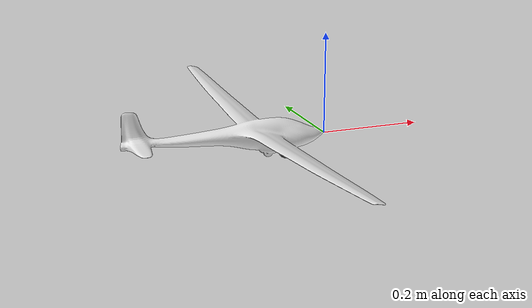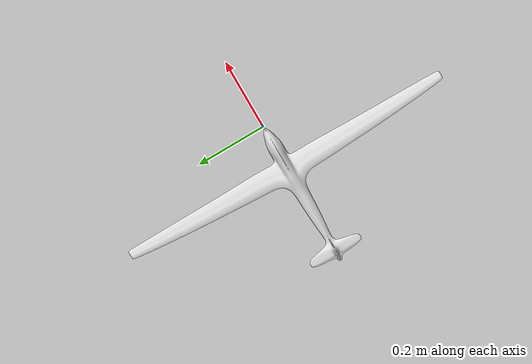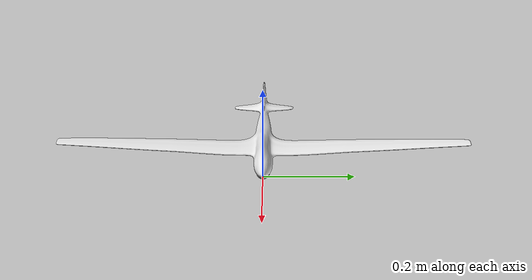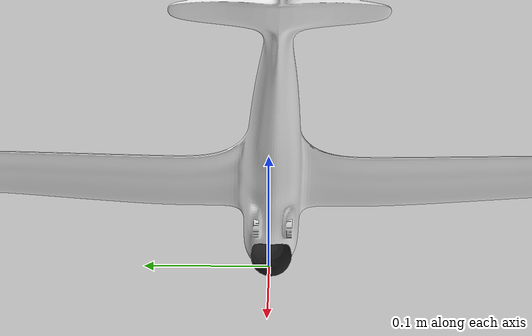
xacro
<?xml version="1.0"?>
<robot name="simple_airplane" xmlns:xacro="http://ros.org/wiki/xacro">

  <xacro:property name="mesh_scale_iso" value="0.1"/>
  <xacro:property name="mesh_scale" value="${mesh_scale_iso} ${mesh_scale_iso} ${mesh_scale_iso}"/>
  <xacro:property name="PI" value="3.1415926535897931"/>

  <link name="base_link">
    <origin xyz="0 0 0" rpy="0 0 0" />
  </link>

  <joint name="base_joint" type="fixed">
    <gravity>0</gravity>
    <origin xyz="0 0 0" rpy="0 0 0" />
    <parent link="base_link" />
    <child link="body_link" />
  </joint>

  <link name="body_link">
    <inertial>
      <mass value="0.1" />
      <origin xyz="0 0 0" />
      <inertia ixx="1" ixy="0" ixz="0" iyy="1" iyz="0" izz="1" />
    </inertial>

    <visual name="base_visual">
      <origin xyz="0 0 0" rpy="0 0 0" />
      <geometry name="pioneer_geom">
        <mesh filename="package://simple_airplane_description/meshes/simple_airplane.dae" scale="${mesh_scale}" />
      </geometry>

    </visual>

    <collision>
      <origin xyz="0 0 0" rpy="0 0 0" />
      <geometry>
        <mesh filename="package://simple_airplane_description/meshes/simple_airplane.dae" scale="${mesh_scale}" />
      </geometry>
    </collision>
  </link>

  <gazebo reference="base_link">
    <gravity>0</gravity>
    <material>
      Gazebo/White
    </material>
  </gazebo>

  <gazebo reference="body_link">
    <gravity>0</gravity>
     <material>
      Gazebo/White
    </material>
  </gazebo>

  <gazebo>
    <plugin name="object_controller" filename="libgazebo_ros_planar_move_with_banking_and_pitching_plugin1.so">
      <commandTopic>cmd_vel</commandTopic>
      <odometryTopic>odom</odometryTopic>
      <odometryFrame>odom</odometryFrame>
      <odometryRate>20.0</odometryRate>
      <robotBaseFrame>base_link</robotBaseFrame>
    </plugin>
  </gazebo>

  <xacro:include filename="$(find simple_airplane_description)/urdf/simple_airplane_pan_tilt_camera.xacro" />

  <gazebo reference="camera_dummy_link">
    <gravity>0</gravity>
     <material>
      Gazebo/White
    </material>
  </gazebo>

  <gazebo reference="camera">
    <gravity>0</gravity>
     <material>
      Gazebo/White
    </material>
  </gazebo>

</robot>

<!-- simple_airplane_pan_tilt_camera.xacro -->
<robot name="simple_airplane" xmlns:xacro="http://ros.org/wiki/xacro">

  <xacro:property name="cameraRadius" value="0.04"/>
  <xacro:property name="cameraCoverRadius" value="0.025"/>
  <xacro:property name="cameraLength" value="0.06"/>
  <xacro:property name="cameraMass" value="0.2" />
  <xacro:property name="cameraSize" value="0.05"/>
  <xacro:property name="PI" value="3.1415926535897931"/>

  <macro name="sphere_inertia" params="m r">
  <inertia  ixx="${2*m*r*r/5}" ixy = "0" ixz = "0"
    iyy="${2*m*r*r/5}" iyz = "0"
    izz="${2*m*r*r/5}"
  />
  </macro>
  <macro name="cylinder_inertia" params="m r h">
    <inertia  ixx="${m*(3*r*r+h*h)/12}" ixy = "0" ixz = "0"
      iyy="${m*(3*r*r+h*h)/12}" iyz = "0"
      izz="${m*r*r/2}"
    />
  </macro>

  <joint name="camera_pan_joint" type="continuous">
    <gravity>0</gravity>
    <origin xyz="${mesh_scale_iso*(-0.8)} 0 ${mesh_scale_iso*(-0.28)}" rpy="0 0 0"/>
    <axis xyz="0 0 1" />
    <anchor xyz="0 0 0" />
    <limit effort="100" velocity="100" k_velocity="0" />
    <joint_properties damping="0.0" friction="0.0" />
    <parent link="body_link"/>
    <child link="camera_dummy_link"/>
  </joint>

  <transmission name="cam_pan_trans">
    <gravity>0</gravity>
      <type>transmission_interface/SimpleTransmission</type>
      <joint name="camera_pan_joint">
            <hardwareInterface>EffortJointInterface</hardwareInterface>
      </joint>
      <actuator name="camera_pan_motor">
        <hardwareInterface>EffortJointInterface</hardwareInterface>
        <mechanicalReduction>1</mechanicalReduction>
      </actuator>
  </transmission>

  <link name="camera_dummy_link">
    <gravity>0</gravity>
        <visual>
          <origin xyz="0.0 0 0" rpy="0 0 0" />
          <geometry>
            <cylinder radius="${mesh_scale_iso*(0.01)}" length="${mesh_scale_iso*(0.01)}" />
          </geometry>
        </visual>
        <inertial>
        <mass value="0.1" />
        <origin xyz="0.0 0 0" rpy="0 0 0" />
        <cylinder_inertia m="0.1" r="0.0025" h="0.0025"  />
      </inertial>
  </link>

  <gazebo reference="camera_dummy_link">
    <gravity>0</gravity>
      <material>
        Gazebo/Black
      </material>
  </gazebo>

  <joint name="camera_tilt_joint" type="continuous">
    <gravity>0</gravity>
    <origin xyz="0 0 0" rpy="0 ${PI/2} 0"/>
    <axis xyz="0 -1 0" />
    <anchor xyz="0 0 0" />
    <limit effort="100" velocity="100" k_velocity="0" />
    <joint_properties damping="0.0" friction="0.0" />
    <parent link="camera_dummy_link"/>
    <child link="camera"/>
  </joint>

  <transmission name="cam_tilt_trans">
    <gravity>0</gravity>
    <type>transmission_interface/SimpleTransmission</type>
    <joint name="camera_tilt_joint">
          <hardwareInterface>EffortJointInterface</hardwareInterface>
    </joint>
    <actuator name="camera_tilt_motor">
      <hardwareInterface>EffortJointInterface</hardwareInterface>
      <mechanicalReduction>1</mechanicalReduction>
    </actuator>
  </transmission>

  <link name="camera">
    <visual>
      <origin xyz="0 0 0" rpy="0 0 0"/>
      <geometry>
        <sphere radius="${mesh_scale_iso*(0.16)}" />
      </geometry>
	  <material name="CameraBlack">
		<color rgba="0.117 0.117 0.117 1.0"/>
	  </material>
    </visual>

    <inertial>
      <mass value="${cameraMass}" />
      <origin xyz="0 0 0" rpy="0 0 0"/>
      <sphere_inertia m="${cameraMass}" r="${cameraRadius}" />
    </inertial>
  </link>

  <gazebo reference="camera">
    <gravity>0</gravity>
	  <sensor type="camera" name="camera1">
	    <update_rate>10.0</update_rate>
      <always_on>1</always_on>
      <visualize>true</visualize>
	    <camera name="head">
	      <horizontal_fov>1.09</horizontal_fov>  <!-- Specify in RAD -->
	      <image>
	        <width>128</width>
	        <height>72</height>
	        <format>R8G8B8</format>
	      </image>
	      <clip>
	        <near>0.02</near>
	        <far>300</far>
	      </clip>
	    </camera>
	    <plugin name="camera_controller" filename="libgazebo_ros_camera.so">
	      <alwaysOn>true</alwaysOn>
	      <updateRate>0.0</updateRate>
	      <cameraName>camera1</cameraName>
	      <imageTopicName>image_raw</imageTopicName>
	      <cameraInfoTopicName>camera_info</cameraInfoTopicName>
	      <frameName>camera</frameName>
	      <hackBaseline>0.07</hackBaseline>
	      <distortionK1>0.0</distortionK1>
	      <distortionK2>0.0</distortionK2>
	      <distortionK3>0.0</distortionK3>
	      <distortionT1>0.0</distortionT1>
	      <distortionT2>0.0</distortionT2>
	    </plugin>
	  </sensor>
      <gravity>0</gravity>
      <material>
        Gazebo/Black
      </material>
	</gazebo>

  <gazebo>
    <plugin name="gazebo_ros_control" filename="libgazebo_ros_control.so">
    </plugin>
  </gazebo>

  </robot>
